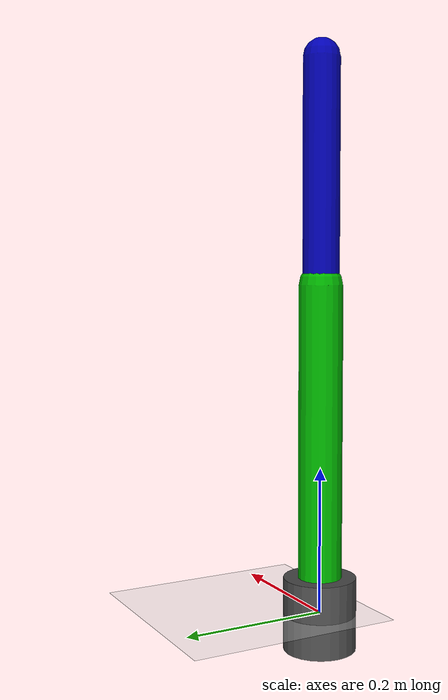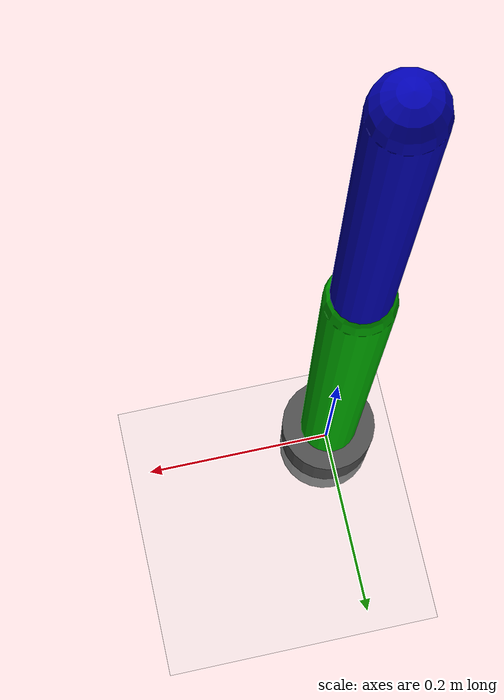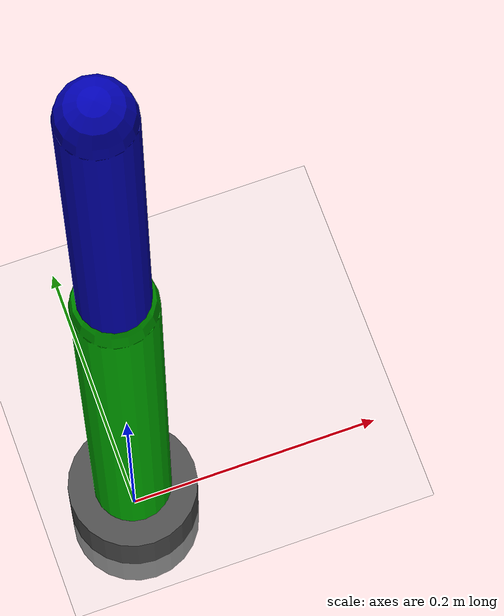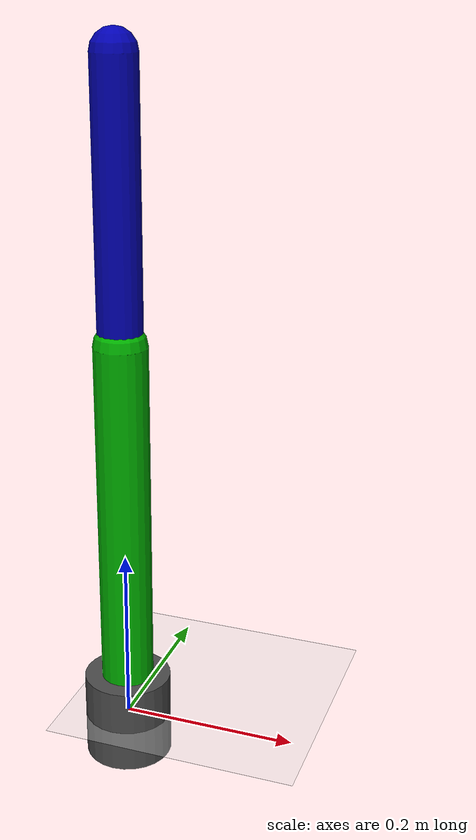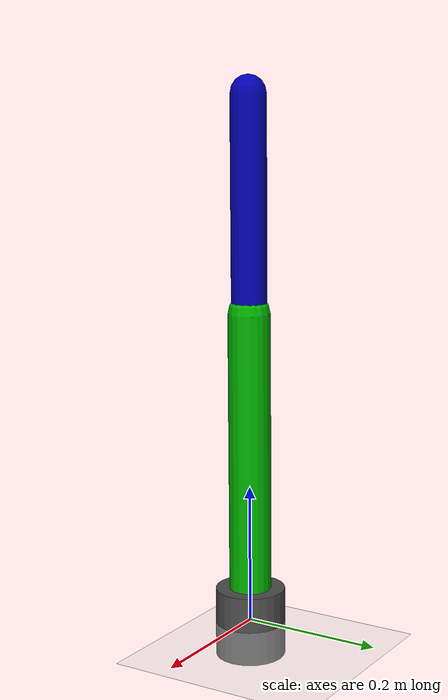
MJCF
<mujoco model="2d_human_arm_skeleton">
    <option timestep="0.0005" gravity="0 0 -9.81"/>

    <worldbody>
        <light pos="0 0 3" dir="0 0 -1"/>
        <geom type="plane" size="10 10 0.1" rgba="0.9 0.9 0.9 1"/>

        <!-- Rigid Base Pillar (Anchored to the floor) -->
        <body name="base" pos="0 0 0">
            <geom type="cylinder" size="0.05 0.05" rgba="0.3 0.3 0.3 1"/>

            <!-- SHOULDER LINK (Rotates relative to the base pillar) -->
            <body name="link1" pos="0 0 0.05">
                <joint name="shoulder_joint" type="hinge" axis="0 1 0" pos="0 0 0"/>
                <geom type="capsule" fromto="0 0 0 0 0 0.4" size="0.03" rgba="0 0.7 0 1"/>

                <!-- ELBOW LINK (Nested inside Link1 - moves through space with the shoulder) -->
                <body name="link2" pos="0 0 0.4">
                    <joint name="elbow_joint" type="hinge" axis="0 1 0" pos="0 0 0"/>
                    <geom type="capsule" fromto="0 0 0 0 0 0.3" size="0.025" rgba="0 0 0.7 1"/>
                </body>
            </body>
        </body>
    </worldbody>

    <actuator>
        <!-- Servos controlling our human arm mockup directly via Python/C++ radians -->
        <position name="shoulder_servo" joint="shoulder_joint" kp="300" kv="30"/>
        <position name="elbow_servo" joint="elbow_joint" kp="200" kv="20"/>
    </actuator>
</mujoco>
